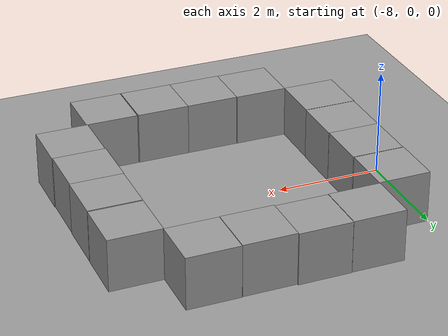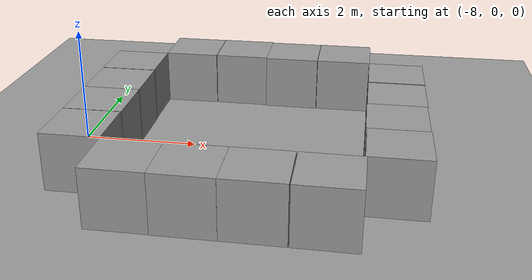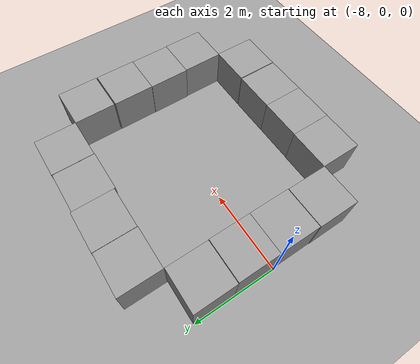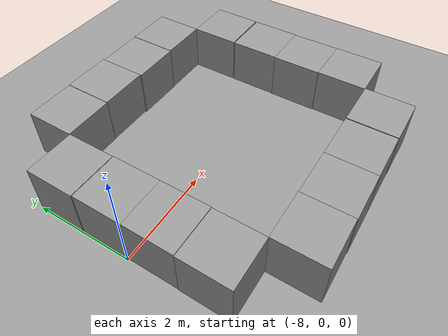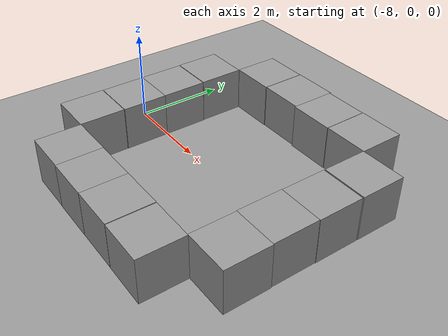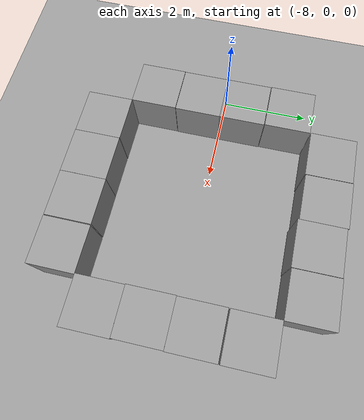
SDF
<sdf version="1.4">
 <world name="default">
  <light name="sun" type="directional">
   <pose>0 0 10 0 -0 0</pose>
   <diffuse>0.8 0.8 0.8 1</diffuse>
   <specular>0.2 0.2 0.2 1</specular>
   <attenuation>
    <range>1000</range>
    <constant>0.9</constant>
    <linear>0.01</linear>
    <quadratic>0.001</quadratic>
   </attenuation>
   <direction>0.5 0.1 -0.9</direction>
  </light>
  <scene><ambient>0.4 0.4 0.4 1</ambient><background>0.7 0.7 0.7 1</background><shadows>1</shadows></scene>
  <physics type="ode">
   <max_step_size>0.01</max_step_size>
   <real_time_factor>1</real_time_factor>
   <real_time_update_rate>100</real_time_update_rate>
   <gravity>0 0 -9.8</gravity>
  </physics>
  <model name="ground_plane_0">
   <static>1</static>
   <link name="link">
    <collision name="collision">
     <geometry><plane><normal>0 0 1</normal><size>100 100</size></plane></geometry>
     <surface><friction><ode><mu>100</mu><mu2>50</mu2></ode></friction></surface>
    </collision>
    <visual name="visual">
     <cast_shadows>0</cast_shadows>
     <geometry><plane><normal>0 0 1</normal><size>100 100</size></plane></geometry>
     <material>
      <script><uri>file://media/materials/scripts/gazebo.material</uri><name>Gazebo/Grey</name></script>
     </material>
    </visual>
    <velocity_decay><linear>0</linear><angular>0</angular></velocity_decay>
   </link>
   <pose>0.497681 0 0 0 -0 0</pose>
  </model>
  <spherical_coordinates>
   <surface_model>EARTH_WGS84</surface_model>
   <latitude_deg>0</latitude_deg>
   <longitude_deg>0</longitude_deg>
   <elevation>0</elevation>
   <heading_deg>0</heading_deg>
  </spherical_coordinates>
  <model name="unit_box_1_0">
   <pose>-7.48394 -1.51071 0.5 0 -0 -0.00164</pose>
   <link name="link">
    <inertial>
     <mass>1</mass>
     <inertia><ixx>1</ixx><ixy>0</ixy><ixz>0</ixz><iyy>1</iyy><iyz>0</iyz><izz>1</izz></inertia>
    </inertial>
    <collision name="collision"><geometry><box><size>1 1 1</size></box></geometry></collision>
    <visual name="visual">
     <geometry><box><size>1 1 1</size></box></geometry>
     <material>
      <script><uri>file://media/materials/scripts/gazebo.material</uri><name>Gazebo/Grey</name></script>
     </material>
    </visual>
    <velocity_decay><linear>0</linear><angular>0</angular></velocity_decay>
   </link>
   <static>0</static>
  </model>
  <model name="unit_box_2">
   <pose>-7.47525 -0.502584 0.5 -0 -0 -1e-06</pose>
   <link name="link">
    <inertial>
     <mass>1</mass>
     <inertia><ixx>1</ixx><ixy>0</ixy><ixz>0</ixz><iyy>1</iyy><iyz>0</iyz><izz>1</izz></inertia>
    </inertial>
    <collision name="collision"><geometry><box><size>1 1 1</size></box></geometry></collision>
    <visual name="visual">
     <geometry><box><size>1 1 1</size></box></geometry>
     <material>
      <script><uri>file://media/materials/scripts/gazebo.material</uri><name>Gazebo/Grey</name></script>
     </material>
    </visual>
    <velocity_decay><linear>0</linear><angular>0</angular></velocity_decay>
   </link>
   <static>0</static>
  </model>
  <model name="unit_box_3_0">
   <pose>-7.47714 0.497416 0.5 0 -0 0</pose>
   <link name="link">
    <inertial>
     <mass>1</mass>
     <inertia><ixx>1</ixx><ixy>0</ixy><ixz>0</ixz><iyy>1</iyy><iyz>0</iyz><izz>1</izz></inertia>
    </inertial>
    <collision name="collision"><geometry><box><size>1 1 1</size></box></geometry></collision>
    <visual name="visual">
     <geometry><box><size>1 1 1</size></box></geometry>
     <material>
      <script><uri>file://media/materials/scripts/gazebo.material</uri><name>Gazebo/Grey</name></script>
     </material>
    </visual>
    <velocity_decay><linear>0</linear><angular>0</angular></velocity_decay>
   </link>
   <static>0</static>
  </model>
  <model name="unit_box_4">
   <pose>-7.48711 1.50851 0.5 0 -0 0</pose>
   <link name="link">
    <inertial>
     <mass>1</mass>
     <inertia><ixx>1</ixx><ixy>0</ixy><ixz>0</ixz><iyy>1</iyy><iyz>0</iyz><izz>1</izz></inertia>
    </inertial>
    <collision name="collision"><geometry><box><size>1 1 1</size></box></geometry></collision>
    <visual name="visual">
     <geometry><box><size>1 1 1</size></box></geometry>
     <material>
      <script><uri>file://media/materials/scripts/gazebo.material</uri><name>Gazebo/Grey</name></script>
     </material>
    </visual>
    <velocity_decay><linear>0</linear><angular>0</angular></velocity_decay>
   </link>
   <static>0</static>
  </model>
  <model name="unit_box_5">
   <pose>-6.49485 2.52303 0.5 0 -0 0</pose>
   <link name="link">
    <inertial>
     <mass>1</mass>
     <inertia><ixx>1</ixx><ixy>0</ixy><ixz>0</ixz><iyy>1</iyy><iyz>0</iyz><izz>1</izz></inertia>
    </inertial>
    <collision name="collision"><geometry><box><size>1 1 1</size></box></geometry></collision>
    <visual name="visual">
     <geometry><box><size>1 1 1</size></box></geometry>
     <material>
      <script><uri>file://media/materials/scripts/gazebo.material</uri><name>Gazebo/Grey</name></script>
     </material>
    </visual>
    <velocity_decay><linear>0</linear><angular>0</angular></velocity_decay>
   </link>
   <static>0</static>
  </model>
  <model name="unit_box_6">
   <pose>-5.48835 2.53261 0.5 0 -0 0</pose>
   <link name="link">
    <inertial>
     <mass>1</mass>
     <inertia><ixx>1</ixx><ixy>0</ixy><ixz>0</ixz><iyy>1</iyy><iyz>0</iyz><izz>1</izz></inertia>
    </inertial>
    <collision name="collision"><geometry><box><size>1 1 1</size></box></geometry></collision>
    <visual name="visual">
     <geometry><box><size>1 1 1</size></box></geometry>
     <material>
      <script><uri>file://media/materials/scripts/gazebo.material</uri><name>Gazebo/Grey</name></script>
     </material>
    </visual>
    <velocity_decay><linear>0</linear><angular>0</angular></velocity_decay>
   </link>
   <static>0</static>
  </model>
  <model name="unit_box_7">
   <pose>-4.48835 2.50374 0.5 0 -0 0</pose>
   <link name="link">
    <inertial>
     <mass>1</mass>
     <inertia><ixx>1</ixx><ixy>0</ixy><ixz>0</ixz><iyy>1</iyy><iyz>0</iyz><izz>1</izz></inertia>
    </inertial>
    <collision name="collision"><geometry><box><size>1 1 1</size></box></geometry></collision>
    <visual name="visual">
     <geometry><box><size>1 1 1</size></box></geometry>
     <material>
      <script><uri>file://media/materials/scripts/gazebo.material</uri><name>Gazebo/Grey</name></script>
     </material>
    </visual>
    <velocity_decay><linear>0</linear><angular>0</angular></velocity_decay>
   </link>
   <static>0</static>
  </model>
  <model name="unit_box_8_0">
   <pose>-3.48186 2.51329 0.5 0 -0 0</pose>
   <link name="link">
    <inertial>
     <mass>1</mass>
     <inertia><ixx>1</ixx><ixy>0</ixy><ixz>0</ixz><iyy>1</iyy><iyz>0</iyz><izz>1</izz></inertia>
    </inertial>
    <collision name="collision"><geometry><box><size>1 1 1</size></box></geometry></collision>
    <visual name="visual">
     <geometry><box><size>1 1 1</size></box></geometry>
     <material>
      <script><uri>file://media/materials/scripts/gazebo.material</uri><name>Gazebo/Grey</name></script>
     </material>
    </visual>
    <velocity_decay><linear>0</linear><angular>0</angular></velocity_decay>
   </link>
   <static>0</static>
  </model>
  <model name="unit_box_9">
   <pose>-6.48462 -2.50579 0.5 0 -0 0.000262</pose>
   <link name="link">
    <inertial>
     <mass>1</mass>
     <inertia><ixx>1</ixx><ixy>0</ixy><ixz>0</ixz><iyy>1</iyy><iyz>0</iyz><izz>1</izz></inertia>
    </inertial>
    <collision name="collision"><geometry><box><size>1 1 1</size></box></geometry></collision>
    <visual name="visual">
     <geometry><box><size>1 1 1</size></box></geometry>
     <material>
      <script><uri>file://media/materials/scripts/gazebo.material</uri><name>Gazebo/Grey</name></script>
     </material>
    </visual>
    <velocity_decay><linear>0</linear><angular>0</angular></velocity_decay>
   </link>
   <static>0</static>
  </model>
  <model name="unit_box_10">
   <pose>-5.48452 -2.51115 0.5 0 -0 0.000263</pose>
   <link name="link">
    <inertial>
     <mass>1</mass>
     <inertia><ixx>1</ixx><ixy>0</ixy><ixz>0</ixz><iyy>1</iyy><iyz>0</iyz><izz>1</izz></inertia>
    </inertial>
    <collision name="collision"><geometry><box><size>1 1 1</size></box></geometry></collision>
    <visual name="visual">
     <geometry><box><size>1 1 1</size></box></geometry>
     <material>
      <script><uri>file://media/materials/scripts/gazebo.material</uri><name>Gazebo/Grey</name></script>
     </material>
    </visual>
    <velocity_decay><linear>0</linear><angular>0</angular></velocity_decay>
   </link>
   <static>0</static>
  </model>
  <model name="unit_box_11">
   <pose>-4.48442 -2.50963 0.5 0 -0 0.000467</pose>
   <link name="link">
    <inertial>
     <mass>1</mass>
     <inertia><ixx>1</ixx><ixy>0</ixy><ixz>0</ixz><iyy>1</iyy><iyz>0</iyz><izz>1</izz></inertia>
    </inertial>
    <collision name="collision"><geometry><box><size>1 1 1</size></box></geometry></collision>
    <visual name="visual">
     <geometry><box><size>1 1 1</size></box></geometry>
     <material>
      <script><uri>file://media/materials/scripts/gazebo.material</uri><name>Gazebo/Grey</name></script>
     </material>
    </visual>
    <velocity_decay><linear>0</linear><angular>0</angular></velocity_decay>
   </link>
   <static>0</static>
  </model>
  <model name="unit_box_12">
   <pose>-3.46806 -2.51389 0.5 0 0 -0.003012</pose>
   <link name="link">
    <inertial>
     <mass>1</mass>
     <inertia><ixx>1</ixx><ixy>0</ixy><ixz>0</ixz><iyy>1</iyy><iyz>0</iyz><izz>1</izz></inertia>
    </inertial>
    <collision name="collision"><geometry><box><size>1 1 1</size></box></geometry></collision>
    <visual name="visual">
     <geometry><box><size>1 1 1</size></box></geometry>
     <material>
      <script><uri>file://media/materials/scripts/gazebo.material</uri><name>Gazebo/Grey</name></script>
     </material>
    </visual>
    <velocity_decay><linear>0</linear><angular>0</angular></velocity_decay>
   </link>
   <static>0</static>
  </model>
  <model name="unit_box_13">
   <pose>-2.49081 -1.5153 0.5 0 0 -0.000218</pose>
   <link name="link">
    <inertial>
     <mass>1</mass>
     <inertia><ixx>1</ixx><ixy>0</ixy><ixz>0</ixz><iyy>1</iyy><iyz>0</iyz><izz>1</izz></inertia>
    </inertial>
    <collision name="collision"><geometry><box><size>1 1 1</size></box></geometry></collision>
    <visual name="visual">
     <geometry><box><size>1 1 1</size></box></geometry>
     <material>
      <script><uri>file://media/materials/scripts/gazebo.material</uri><name>Gazebo/Grey</name></script>
     </material>
    </visual>
    <velocity_decay><linear>0</linear><angular>0</angular></velocity_decay>
   </link>
   <static>0</static>
  </model>
  <model name="unit_box_14">
   <pose>-2.50313 -0.515261 0.5 -0 -0 -0.000209</pose>
   <link name="link">
    <inertial>
     <mass>1</mass>
     <inertia><ixx>1</ixx><ixy>0</ixy><ixz>0</ixz><iyy>1</iyy><iyz>0</iyz><izz>1</izz></inertia>
    </inertial>
    <collision name="collision"><geometry><box><size>1 1 1</size></box></geometry></collision>
    <visual name="visual">
     <geometry><box><size>1 1 1</size></box></geometry>
     <material>
      <script><uri>file://media/materials/scripts/gazebo.material</uri><name>Gazebo/Grey</name></script>
     </material>
    </visual>
    <velocity_decay><linear>0</linear><angular>0</angular></velocity_decay>
   </link>
   <static>0</static>
  </model>
  <model name="unit_box_15">
   <pose>-2.49452 0.484769 0.5 0 -0 -0.000231</pose>
   <link name="link">
    <inertial>
     <mass>1</mass>
     <inertia><ixx>1</ixx><ixy>0</ixy><ixz>0</ixz><iyy>1</iyy><iyz>0</iyz><izz>1</izz></inertia>
    </inertial>
    <collision name="collision"><geometry><box><size>1 1 1</size></box></geometry></collision>
    <visual name="visual">
     <geometry><box><size>1 1 1</size></box></geometry>
     <material>
      <script><uri>file://media/materials/scripts/gazebo.material</uri><name>Gazebo/Grey</name></script>
     </material>
    </visual>
    <velocity_decay><linear>0</linear><angular>0</angular></velocity_decay>
   </link>
   <static>0</static>
  </model>
  <model name="unit_box_16">
   <pose>-2.49059 1.5115 0.5 0 -0 0</pose>
   <link name="link">
    <inertial>
     <mass>1</mass>
     <inertia><ixx>1</ixx><ixy>0</ixy><ixz>0</ixz><iyy>1</iyy><iyz>0</iyz><izz>1</izz></inertia>
    </inertial>
    <collision name="collision"><geometry><box><size>1 1 1</size></box></geometry></collision>
    <visual name="visual">
     <geometry><box><size>1 1 1</size></box></geometry>
     <material>
      <script><uri>file://media/materials/scripts/gazebo.material</uri><name>Gazebo/Grey</name></script>
     </material>
    </visual>
    <velocity_decay><linear>0</linear><angular>0</angular></velocity_decay>
   </link>
   <static>0</static>
  </model>
 </world>
</sdf>
